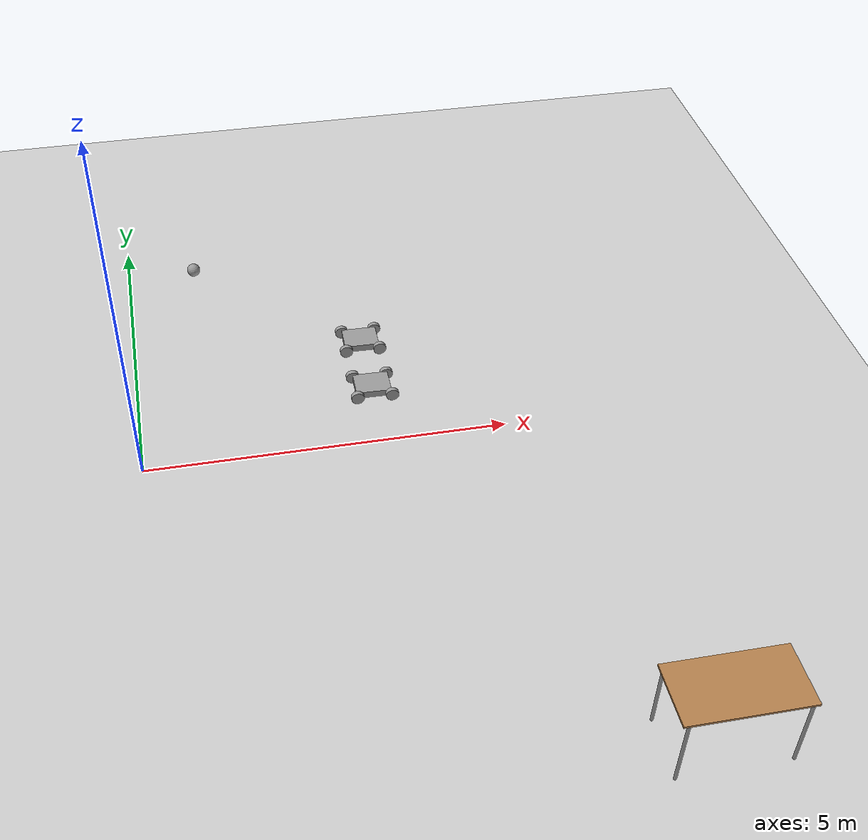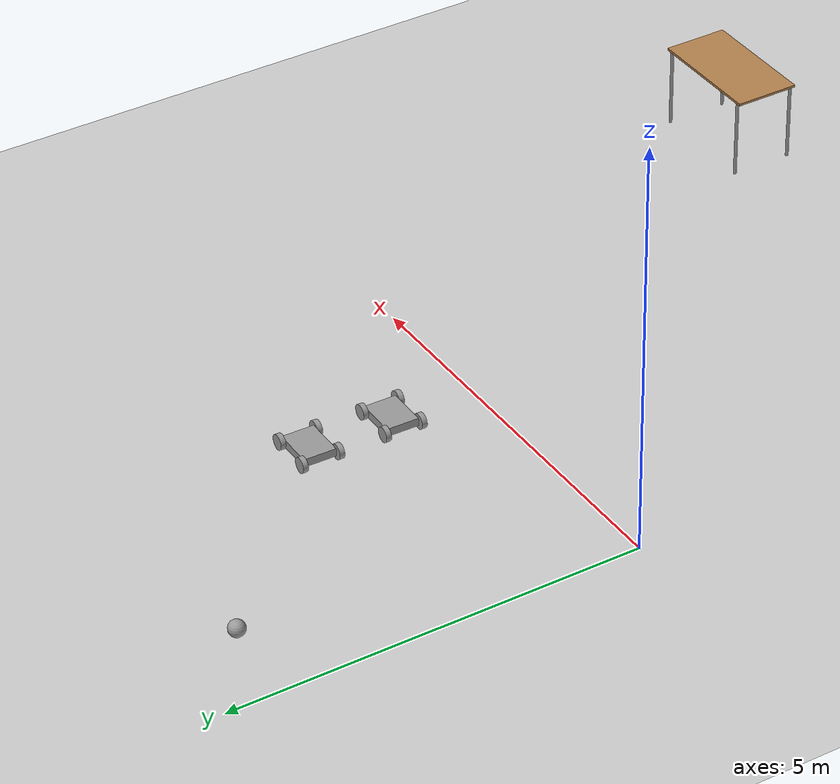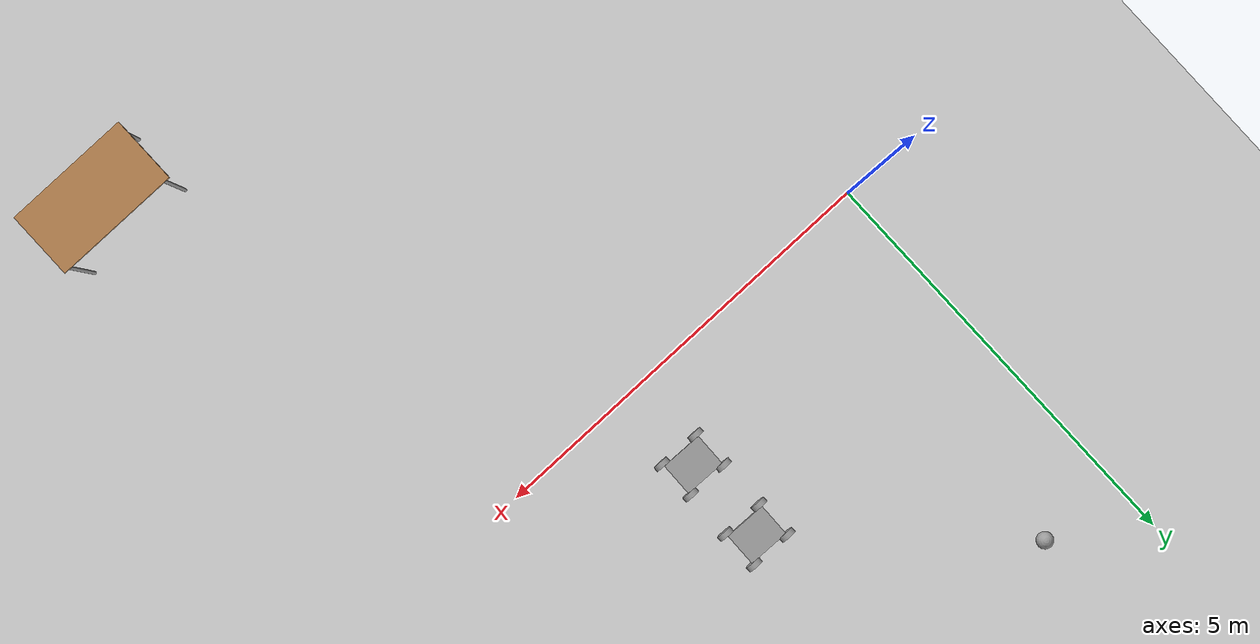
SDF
<sdf version="1.6">
 <world name="default">
  <model name="ground_plane">
   <static>1</static>
   <link name="link">
    <collision name="collision">
     <geometry><plane><normal>0 0 1</normal><size>100 100</size></plane></geometry>
     <surface>
      <contact><collide_bitmask>65535</collide_bitmask></contact>
      <friction><ode><mu>100</mu><mu2>50</mu2></ode></friction>
     </surface>
    </collision>
    <visual name="visual">
     <cast_shadows>0</cast_shadows>
     <geometry><plane><normal>0 0 1</normal><size>100 100</size></plane></geometry>
     <material>
      <script><uri>file://media/materials/scripts/gazebo.material</uri><name>Gazebo/Grey</name></script>
     </material>
    </visual>
   </link>
  </model>
  <model name="table">
   <static>1</static>
   <link name="link">
    <collision name="surface">
     <pose>0 0 1 0 -0 0</pose>
     <geometry><box><size>1.5 0.8 0.03</size></box></geometry>
     <surface><friction><ode><mu>0.6</mu><mu2>0.6</mu2></ode></friction></surface>
    </collision>
    <visual name="visual1">
     <pose>0 0 1 0 -0 0</pose>
     <geometry><box><size>1.5 0.8 0.03</size></box></geometry>
     <material>
      <script><uri>file://media/materials/scripts/gazebo.material</uri><name>Gazebo/Wood</name></script>
     </material>
    </visual>
    <collision name="front_left_leg">
     <pose>0.68 0.38 0.5 0 -0 0</pose>
     <geometry><cylinder><radius>0.02</radius><length>1</length></cylinder></geometry>
    </collision>
    <visual name="front_left_leg">
     <pose>0.68 0.38 0.5 0 -0 0</pose>
     <geometry><cylinder><radius>0.02</radius><length>1</length></cylinder></geometry>
     <material>
      <script><uri>file://media/materials/scripts/gazebo.material</uri><name>Gazebo/Grey</name></script>
     </material>
    </visual>
    <collision name="front_right_leg">
     <pose>0.68 -0.38 0.5 0 -0 0</pose>
     <geometry><cylinder><radius>0.02</radius><length>1</length></cylinder></geometry>
    </collision>
    <visual name="front_right_leg">
     <pose>0.68 -0.38 0.5 0 -0 0</pose>
     <geometry><cylinder><radius>0.02</radius><length>1</length></cylinder></geometry>
     <material>
      <script><uri>file://media/materials/scripts/gazebo.material</uri><name>Gazebo/Grey</name></script>
     </material>
    </visual>
    <collision name="back_right_leg">
     <pose>-0.68 -0.38 0.5 0 -0 0</pose>
     <geometry><cylinder><radius>0.02</radius><length>1</length></cylinder></geometry>
    </collision>
    <visual name="back_right_leg">
     <pose>-0.68 -0.38 0.5 0 -0 0</pose>
     <geometry><cylinder><radius>0.02</radius><length>1</length></cylinder></geometry>
     <material>
      <script><uri>file://media/materials/scripts/gazebo.material</uri><name>Gazebo/Grey</name></script>
     </material>
    </visual>
    <collision name="back_left_leg">
     <pose>-0.68 0.38 0.5 0 -0 0</pose>
     <geometry><cylinder><radius>0.02</radius><length>1</length></cylinder></geometry>
    </collision>
    <visual name="back_left_leg">
     <pose>-0.68 0.38 0.5 0 -0 0</pose>
     <geometry><cylinder><radius>0.02</radius><length>1</length></cylinder></geometry>
     <material>
      <script><uri>file://media/materials/scripts/gazebo.material</uri><name>Gazebo/Grey</name></script>
     </material>
    </visual>
   </link>
   <pose>6.07749 -5.38423 0 0 -0 0</pose>
  </model>
  <model name="model">
   <link name="link_0">
    <pose>-0.002904 -0.001997 0.002249 0 -0 0</pose>
    <inertial>
     <mass>1</mass>
     <inertia>
      <ixx>0.166667</ixx>
      <ixy>0</ixy>
      <ixz>0</ixz>
      <iyy>0.166667</iyy>
      <iyz>0</iyz>
      <izz>0.166667</izz>
     </inertia>
    </inertial>
    <visual name="visual">
     <geometry><box><size>0.4 0.5 0.1</size></box></geometry>
     <material>
      <lighting>1</lighting>
      <script><uri>file://media/materials/scripts/gazebo.material</uri><name>Gazebo/Grey</name></script>
      <shader type="pixel"><normal_map>__default__</normal_map></shader>
      <ambient>0.3 0.3 0.3 1</ambient>
      <diffuse>0.7 0.7 0.7 1</diffuse>
      <specular>0.01 0.01 0.01 1</specular>
      <emissive>0 0 0 1</emissive>
     </material>
    </visual>
    <collision name="collision">
     <geometry><box><size>0.4 0.5 0.1</size></box></geometry>
     <surface>
      <friction>
       <ode><mu>1</mu><mu2>1</mu2><fdir1>0 0 0</fdir1><slip1>0</slip1><slip2>0</slip2></ode>
       <torsional>
        <coefficient>1</coefficient>
        <patch_radius>0</patch_radius>
        <surface_radius>0</surface_radius>
        <use_patch_radius>1</use_patch_radius>
        <ode><slip>0</slip></ode>
       </torsional>
      </friction>
      <bounce><restitution_coefficient>0</restitution_coefficient><threshold>1e+06</threshold></bounce>
      <contact>
       <collide_without_contact>0</collide_without_contact>
       <collide_without_contact_bitmask>1</collide_without_contact_bitmask>
       <collide_bitmask>1</collide_bitmask>
       <ode>
        <soft_cfm>0</soft_cfm>
        <soft_erp>0.2</soft_erp>
        <kp>1e+13</kp>
        <kd>1</kd>
        <max_vel>0.01</max_vel>
        <min_depth>0</min_depth>
       </ode>
       <bullet>
        <split_impulse>1</split_impulse>
        <split_impulse_penetration_threshold>-0.01</split_impulse_penetration_threshold>
        <soft_cfm>0</soft_cfm>
        <soft_erp>0.2</soft_erp>
        <kp>1e+13</kp>
        <kd>1</kd>
       </bullet>
      </contact>
     </surface>
    </collision>
   </link>
   <link name="link_1">
    <pose>-0.226187 -0.251789 -0.000187 -0.004638 1.5707 -0.004637</pose>
    <inertial>
     <mass>1.45192</mass>
     <inertia>
      <ixx>0.00361618</ixx>
      <ixy>0</ixy>
      <ixz>0</ixz>
      <iyy>0.00361618</iyy>
      <iyz>0</iyz>
      <izz>0.00626991</izz>
     </inertia>
    </inertial>
    <visual name="visual">
     <geometry><cylinder><radius>0.0929338</radius><length>0.063066</length></cylinder></geometry>
     <material>
      <lighting>1</lighting>
      <script><uri>file://media/materials/scripts/gazebo.material</uri><name>Gazebo/Grey</name></script>
      <shader type="pixel"><normal_map>__default__</normal_map></shader>
      <ambient>0.3 0.3 0.3 1</ambient>
      <diffuse>0.7 0.7 0.7 1</diffuse>
      <specular>0.01 0.01 0.01 1</specular>
      <emissive>0 0 0 1</emissive>
     </material>
    </visual>
    <collision name="collision">
     <geometry><cylinder><radius>0.092934</radius><length>0.063066</length></cylinder></geometry>
     <surface>
      <friction>
       <ode><mu>1</mu><mu2>1</mu2><fdir1>0 0 0</fdir1><slip1>0</slip1><slip2>0</slip2></ode>
       <torsional>
        <coefficient>1</coefficient>
        <patch_radius>0</patch_radius>
        <surface_radius>0</surface_radius>
        <use_patch_radius>1</use_patch_radius>
        <ode><slip>0</slip></ode>
       </torsional>
      </friction>
      <bounce><restitution_coefficient>0</restitution_coefficient><threshold>1e+06</threshold></bounce>
      <contact>
       <collide_without_contact>0</collide_without_contact>
       <collide_without_contact_bitmask>1</collide_without_contact_bitmask>
       <collide_bitmask>1</collide_bitmask>
       <ode>
        <soft_cfm>0</soft_cfm>
        <soft_erp>0.2</soft_erp>
        <kp>1e+13</kp>
        <kd>1</kd>
        <max_vel>0.01</max_vel>
        <min_depth>0</min_depth>
       </ode>
       <bullet>
        <split_impulse>1</split_impulse>
        <split_impulse_penetration_threshold>-0.01</split_impulse_penetration_threshold>
        <soft_cfm>0</soft_cfm>
        <soft_erp>0.2</soft_erp>
        <kp>1e+13</kp>
        <kd>1</kd>
       </bullet>
      </contact>
     </surface>
    </collision>
   </link>
   <link name="link_1_clone">
    <pose>-0.232362 0.238295 -0.000751 -0.004643 1.5707 -0.004642</pose>
    <inertial>
     <mass>1.45192</mass>
     <inertia>
      <ixx>0.00361618</ixx>
      <ixy>0</ixy>
      <ixz>0</ixz>
      <iyy>0.00361618</iyy>
      <iyz>0</iyz>
      <izz>0.00626991</izz>
     </inertia>
    </inertial>
    <visual name="visual">
     <geometry><cylinder><radius>0.0929338</radius><length>0.063066</length></cylinder></geometry>
     <material>
      <lighting>1</lighting>
      <script><uri>file://media/materials/scripts/gazebo.material</uri><name>Gazebo/Grey</name></script>
      <shader type="pixel"><normal_map>__default__</normal_map></shader>
      <ambient>0.3 0.3 0.3 1</ambient>
      <diffuse>0.7 0.7 0.7 1</diffuse>
      <specular>0.01 0.01 0.01 1</specular>
      <emissive>0 0 0 1</emissive>
     </material>
    </visual>
    <collision name="collision">
     <geometry><cylinder><radius>0.092934</radius><length>0.063066</length></cylinder></geometry>
     <surface>
      <friction>
       <ode><mu>1</mu><mu2>1</mu2><fdir1>0 0 0</fdir1><slip1>0</slip1><slip2>0</slip2></ode>
       <torsional>
        <coefficient>1</coefficient>
        <patch_radius>0</patch_radius>
        <surface_radius>0</surface_radius>
        <use_patch_radius>1</use_patch_radius>
        <ode><slip>0</slip></ode>
       </torsional>
      </friction>
      <bounce><restitution_coefficient>0</restitution_coefficient><threshold>1e+06</threshold></bounce>
      <contact>
       <collide_without_contact>0</collide_without_contact>
       <collide_without_contact_bitmask>1</collide_without_contact_bitmask>
       <collide_bitmask>1</collide_bitmask>
       <ode>
        <soft_cfm>0</soft_cfm>
        <soft_erp>0.2</soft_erp>
        <kp>1e+13</kp>
        <kd>1</kd>
        <max_vel>0.01</max_vel>
        <min_depth>0</min_depth>
       </ode>
       <bullet>
        <split_impulse>1</split_impulse>
        <split_impulse_penetration_threshold>-0.01</split_impulse_penetration_threshold>
        <soft_cfm>0</soft_cfm>
        <soft_erp>0.2</soft_erp>
        <kp>1e+13</kp>
        <kd>1</kd>
       </bullet>
      </contact>
     </surface>
    </collision>
   </link>
   <link name="link_1_clone_0">
    <pose>0.230723 0.254996 -0.000688 -0.004646 1.5707 -0.004645</pose>
    <inertial>
     <mass>1.45192</mass>
     <inertia>
      <ixx>0.00361618</ixx>
      <ixy>0</ixy>
      <ixz>0</ixz>
      <iyy>0.00361618</iyy>
      <iyz>0</iyz>
      <izz>0.00626991</izz>
     </inertia>
    </inertial>
    <visual name="visual">
     <geometry><cylinder><radius>0.0929338</radius><length>0.063066</length></cylinder></geometry>
     <material>
      <lighting>1</lighting>
      <script><uri>file://media/materials/scripts/gazebo.material</uri><name>Gazebo/Grey</name></script>
      <shader type="pixel"><normal_map>__default__</normal_map></shader>
      <ambient>0.3 0.3 0.3 1</ambient>
      <diffuse>0.7 0.7 0.7 1</diffuse>
      <specular>0.01 0.01 0.01 1</specular>
      <emissive>0 0 0 1</emissive>
     </material>
    </visual>
    <collision name="collision">
     <geometry><cylinder><radius>0.092934</radius><length>0.063066</length></cylinder></geometry>
     <surface>
      <friction>
       <ode><mu>1</mu><mu2>1</mu2><fdir1>0 0 0</fdir1><slip1>0</slip1><slip2>0</slip2></ode>
       <torsional>
        <coefficient>1</coefficient>
        <patch_radius>0</patch_radius>
        <surface_radius>0</surface_radius>
        <use_patch_radius>1</use_patch_radius>
        <ode><slip>0</slip></ode>
       </torsional>
      </friction>
      <bounce><restitution_coefficient>0</restitution_coefficient><threshold>1e+06</threshold></bounce>
      <contact>
       <collide_without_contact>0</collide_without_contact>
       <collide_without_contact_bitmask>1</collide_without_contact_bitmask>
       <collide_bitmask>1</collide_bitmask>
       <ode>
        <soft_cfm>0</soft_cfm>
        <soft_erp>0.2</soft_erp>
        <kp>1e+13</kp>
        <kd>1</kd>
        <max_vel>0.01</max_vel>
        <min_depth>0</min_depth>
       </ode>
       <bullet>
        <split_impulse>1</split_impulse>
        <split_impulse_penetration_threshold>-0.01</split_impulse_penetration_threshold>
        <soft_cfm>0</soft_cfm>
        <soft_erp>0.2</soft_erp>
        <kp>1e+13</kp>
        <kd>1</kd>
       </bullet>
      </contact>
     </surface>
    </collision>
   </link>
   <link name="link_1_clone_0_clone">
    <pose>0.230723 -0.239511 -0.000688 -0.004644 1.5707 -0.004643</pose>
    <inertial>
     <mass>1.45192</mass>
     <inertia>
      <ixx>0.00361618</ixx>
      <ixy>0</ixy>
      <ixz>0</ixz>
      <iyy>0.00361618</iyy>
      <iyz>0</iyz>
      <izz>0.00626991</izz>
     </inertia>
    </inertial>
    <visual name="visual">
     <geometry><cylinder><radius>0.0929338</radius><length>0.063066</length></cylinder></geometry>
     <material>
      <lighting>1</lighting>
      <script><uri>file://media/materials/scripts/gazebo.material</uri><name>Gazebo/Grey</name></script>
      <shader type="pixel"><normal_map>__default__</normal_map></shader>
      <ambient>0.3 0.3 0.3 1</ambient>
      <diffuse>0.7 0.7 0.7 1</diffuse>
      <specular>0.01 0.01 0.01 1</specular>
      <emissive>0 0 0 1</emissive>
     </material>
    </visual>
    <collision name="collision">
     <geometry><cylinder><radius>0.092934</radius><length>0.063066</length></cylinder></geometry>
     <surface>
      <friction>
       <ode><mu>1</mu><mu2>1</mu2><fdir1>0 0 0</fdir1><slip1>0</slip1><slip2>0</slip2></ode>
       <torsional>
        <coefficient>1</coefficient>
        <patch_radius>0</patch_radius>
        <surface_radius>0</surface_radius>
        <use_patch_radius>1</use_patch_radius>
        <ode><slip>0</slip></ode>
       </torsional>
      </friction>
      <bounce><restitution_coefficient>0</restitution_coefficient><threshold>1e+06</threshold></bounce>
      <contact>
       <collide_without_contact>0</collide_without_contact>
       <collide_without_contact_bitmask>1</collide_without_contact_bitmask>
       <collide_bitmask>1</collide_bitmask>
       <ode>
        <soft_cfm>0</soft_cfm>
        <soft_erp>0.2</soft_erp>
        <kp>1e+13</kp>
        <kd>1</kd>
        <max_vel>0.01</max_vel>
        <min_depth>0</min_depth>
       </ode>
       <bullet>
        <split_impulse>1</split_impulse>
        <split_impulse_penetration_threshold>-0.01</split_impulse_penetration_threshold>
        <soft_cfm>0</soft_cfm>
        <soft_erp>0.2</soft_erp>
        <kp>1e+13</kp>
        <kd>1</kd>
       </bullet>
      </contact>
     </surface>
    </collision>
   </link>
   <joint name="link_0_JOINT_18" type="revolute">
    <parent>link_0</parent>
    <child>link_1</child>
    <axis>
     <xyz>0 0 1</xyz>
     <use_parent_model_frame>0</use_parent_model_frame>
     <limit>
      <lower>-1.79769e+308</lower>
      <upper>1.79769e+308</upper>
      <effort>-1</effort>
      <velocity>-1</velocity>
     </limit>
     <dynamics>
      <spring_reference>0</spring_reference>
      <spring_stiffness>0</spring_stiffness>
      <damping>0</damping>
      <friction>0</friction>
     </dynamics>
    </axis>
    <physics>
     <ode><limit><cfm>0</cfm><erp>0.2</erp></limit><suspension><cfm>0</cfm><erp>0.2</erp></suspension></ode>
    </physics>
   </joint>
   <joint name="link_0_JOINT_19" type="revolute">
    <parent>link_0</parent>
    <child>link_1_clone</child>
    <axis>
     <xyz>0 0 1</xyz>
     <use_parent_model_frame>0</use_parent_model_frame>
     <limit>
      <lower>-1.79769e+308</lower>
      <upper>1.79769e+308</upper>
      <effort>-1</effort>
      <velocity>-1</velocity>
     </limit>
     <dynamics>
      <spring_reference>0</spring_reference>
      <spring_stiffness>0</spring_stiffness>
      <damping>0</damping>
     </dynamics>
    </axis>
    <physics>
     <ode><limit><cfm>0</cfm><erp>0.2</erp></limit><suspension><cfm>0</cfm><erp>0.2</erp></suspension></ode>
    </physics>
   </joint>
   <joint name="link_0_JOINT_20" type="revolute">
    <parent>link_0</parent>
    <child>link_1_clone_0</child>
    <axis>
     <xyz>0 0 1</xyz>
     <use_parent_model_frame>0</use_parent_model_frame>
     <limit>
      <lower>-1.79769e+308</lower>
      <upper>1.79769e+308</upper>
      <effort>-1</effort>
      <velocity>-1</velocity>
     </limit>
     <dynamics>
      <spring_reference>0</spring_reference>
      <spring_stiffness>0</spring_stiffness>
      <damping>0</damping>
      <friction>0</friction>
     </dynamics>
    </axis>
    <physics>
     <ode><limit><cfm>0</cfm><erp>0.2</erp></limit><suspension><cfm>0</cfm><erp>0.2</erp></suspension></ode>
    </physics>
   </joint>
   <joint name="link_0_JOINT_22" type="revolute">
    <parent>link_0</parent>
    <child>link_1_clone_0_clone</child>
    <axis>
     <xyz>0 0 1</xyz>
     <use_parent_model_frame>0</use_parent_model_frame>
     <limit>
      <lower>-1.79769e+308</lower>
      <upper>1.79769e+308</upper>
      <effort>-1</effort>
      <velocity>-1</velocity>
     </limit>
     <dynamics>
      <spring_reference>0</spring_reference>
      <spring_stiffness>0</spring_stiffness>
      <damping>0</damping>
     </dynamics>
    </axis>
    <physics>
     <ode><limit><cfm>0</cfm><erp>0.2</erp></limit><suspension><cfm>0</cfm><erp>0.2</erp></suspension></ode>
    </physics>
   </joint>
   <static>0</static>
   <pose>3.30415 1.05015 0.093649 2.8e-05 0.000107 -1.59202</pose>
  </model>
  <model name="model_clone">
   <link name="link_0">
    <pose>-0.002904 -0.001997 0.002249 0 -0 0</pose>
    <inertial>
     <mass>1</mass>
     <inertia>
      <ixx>0.166667</ixx>
      <ixy>0</ixy>
      <ixz>0</ixz>
      <iyy>0.166667</iyy>
      <iyz>0</iyz>
      <izz>0.166667</izz>
     </inertia>
    </inertial>
    <visual name="visual">
     <geometry><box><size>0.4 0.5 0.1</size></box></geometry>
     <material>
      <lighting>1</lighting>
      <script><uri>file://media/materials/scripts/gazebo.material</uri><name>Gazebo/Grey</name></script>
      <shader type="pixel"><normal_map>__default__</normal_map></shader>
      <ambient>0.3 0.3 0.3 1</ambient>
      <diffuse>0.7 0.7 0.7 1</diffuse>
      <specular>0.01 0.01 0.01 1</specular>
      <emissive>0 0 0 1</emissive>
     </material>
    </visual>
    <collision name="collision">
     <geometry><box><size>0.4 0.5 0.1</size></box></geometry>
     <surface>
      <friction>
       <ode><mu>1</mu><mu2>1</mu2><fdir1>0 0 0</fdir1><slip1>0</slip1><slip2>0</slip2></ode>
       <torsional>
        <coefficient>1</coefficient>
        <patch_radius>0</patch_radius>
        <surface_radius>0</surface_radius>
        <use_patch_radius>1</use_patch_radius>
        <ode><slip>0</slip></ode>
       </torsional>
      </friction>
      <bounce><restitution_coefficient>0</restitution_coefficient><threshold>1e+06</threshold></bounce>
      <contact>
       <collide_without_contact>0</collide_without_contact>
       <collide_without_contact_bitmask>1</collide_without_contact_bitmask>
       <collide_bitmask>1</collide_bitmask>
       <ode>
        <soft_cfm>0</soft_cfm>
        <soft_erp>0.2</soft_erp>
        <kp>1e+13</kp>
        <kd>1</kd>
        <max_vel>0.01</max_vel>
        <min_depth>0</min_depth>
       </ode>
       <bullet>
        <split_impulse>1</split_impulse>
        <split_impulse_penetration_threshold>-0.01</split_impulse_penetration_threshold>
        <soft_cfm>0</soft_cfm>
        <soft_erp>0.2</soft_erp>
        <kp>1e+13</kp>
        <kd>1</kd>
       </bullet>
      </contact>
     </surface>
    </collision>
   </link>
   <link name="link_1">
    <pose>-0.226187 -0.251789 -0.000187 -0.004638 1.5707 -0.004637</pose>
    <inertial>
     <mass>1.45192</mass>
     <inertia>
      <ixx>0.00361618</ixx>
      <ixy>0</ixy>
      <ixz>0</ixz>
      <iyy>0.00361618</iyy>
      <iyz>0</iyz>
      <izz>0.00626991</izz>
     </inertia>
    </inertial>
    <visual name="visual">
     <geometry><cylinder><radius>0.0929338</radius><length>0.063066</length></cylinder></geometry>
     <material>
      <lighting>1</lighting>
      <script><uri>file://media/materials/scripts/gazebo.material</uri><name>Gazebo/Grey</name></script>
      <shader type="pixel"><normal_map>__default__</normal_map></shader>
      <ambient>0.3 0.3 0.3 1</ambient>
      <diffuse>0.7 0.7 0.7 1</diffuse>
      <specular>0.01 0.01 0.01 1</specular>
      <emissive>0 0 0 1</emissive>
     </material>
    </visual>
    <collision name="collision">
     <geometry><cylinder><radius>0.092934</radius><length>0.063066</length></cylinder></geometry>
     <surface>
      <friction>
       <ode><mu>1</mu><mu2>1</mu2><fdir1>0 0 0</fdir1><slip1>0</slip1><slip2>0</slip2></ode>
       <torsional>
        <coefficient>1</coefficient>
        <patch_radius>0</patch_radius>
        <surface_radius>0</surface_radius>
        <use_patch_radius>1</use_patch_radius>
        <ode><slip>0</slip></ode>
       </torsional>
      </friction>
      <bounce><restitution_coefficient>0</restitution_coefficient><threshold>1e+06</threshold></bounce>
      <contact>
       <collide_without_contact>0</collide_without_contact>
       <collide_without_contact_bitmask>1</collide_without_contact_bitmask>
       <collide_bitmask>1</collide_bitmask>
       <ode>
        <soft_cfm>0</soft_cfm>
        <soft_erp>0.2</soft_erp>
        <kp>1e+13</kp>
        <kd>1</kd>
        <max_vel>0.01</max_vel>
        <min_depth>0</min_depth>
       </ode>
       <bullet>
        <split_impulse>1</split_impulse>
        <split_impulse_penetration_threshold>-0.01</split_impulse_penetration_threshold>
        <soft_cfm>0</soft_cfm>
        <soft_erp>0.2</soft_erp>
        <kp>1e+13</kp>
        <kd>1</kd>
       </bullet>
      </contact>
     </surface>
    </collision>
   </link>
   <link name="link_1_clone">
    <pose>-0.232362 0.238295 -0.000751 -0.004643 1.5707 -0.004642</pose>
    <inertial>
     <mass>1.45192</mass>
     <inertia>
      <ixx>0.00361618</ixx>
      <ixy>0</ixy>
      <ixz>0</ixz>
      <iyy>0.00361618</iyy>
      <iyz>0</iyz>
      <izz>0.00626991</izz>
     </inertia>
    </inertial>
    <visual name="visual">
     <geometry><cylinder><radius>0.0929338</radius><length>0.063066</length></cylinder></geometry>
     <material>
      <lighting>1</lighting>
      <script><uri>file://media/materials/scripts/gazebo.material</uri><name>Gazebo/Grey</name></script>
      <shader type="pixel"><normal_map>__default__</normal_map></shader>
      <ambient>0.3 0.3 0.3 1</ambient>
      <diffuse>0.7 0.7 0.7 1</diffuse>
      <specular>0.01 0.01 0.01 1</specular>
      <emissive>0 0 0 1</emissive>
     </material>
    </visual>
    <collision name="collision">
     <geometry><cylinder><radius>0.092934</radius><length>0.063066</length></cylinder></geometry>
     <surface>
      <friction>
       <ode><mu>1</mu><mu2>1</mu2><fdir1>0 0 0</fdir1><slip1>0</slip1><slip2>0</slip2></ode>
       <torsional>
        <coefficient>1</coefficient>
        <patch_radius>0</patch_radius>
        <surface_radius>0</surface_radius>
        <use_patch_radius>1</use_patch_radius>
        <ode><slip>0</slip></ode>
       </torsional>
      </friction>
      <bounce><restitution_coefficient>0</restitution_coefficient><threshold>1e+06</threshold></bounce>
      <contact>
       <collide_without_contact>0</collide_without_contact>
       <collide_without_contact_bitmask>1</collide_without_contact_bitmask>
       <collide_bitmask>1</collide_bitmask>
       <ode>
        <soft_cfm>0</soft_cfm>
        <soft_erp>0.2</soft_erp>
        <kp>1e+13</kp>
        <kd>1</kd>
        <max_vel>0.01</max_vel>
        <min_depth>0</min_depth>
       </ode>
       <bullet>
        <split_impulse>1</split_impulse>
        <split_impulse_penetration_threshold>-0.01</split_impulse_penetration_threshold>
        <soft_cfm>0</soft_cfm>
        <soft_erp>0.2</soft_erp>
        <kp>1e+13</kp>
        <kd>1</kd>
       </bullet>
      </contact>
     </surface>
    </collision>
   </link>
   <link name="link_1_clone_0">
    <pose>0.230723 0.254996 -0.000688 -0.004646 1.5707 -0.004645</pose>
    <inertial>
     <mass>1.45192</mass>
     <inertia>
      <ixx>0.00361618</ixx>
      <ixy>0</ixy>
      <ixz>0</ixz>
      <iyy>0.00361618</iyy>
      <iyz>0</iyz>
      <izz>0.00626991</izz>
     </inertia>
    </inertial>
    <visual name="visual">
     <geometry><cylinder><radius>0.0929338</radius><length>0.063066</length></cylinder></geometry>
     <material>
      <lighting>1</lighting>
      <script><uri>file://media/materials/scripts/gazebo.material</uri><name>Gazebo/Grey</name></script>
      <shader type="pixel"><normal_map>__default__</normal_map></shader>
      <ambient>0.3 0.3 0.3 1</ambient>
      <diffuse>0.7 0.7 0.7 1</diffuse>
      <specular>0.01 0.01 0.01 1</specular>
      <emissive>0 0 0 1</emissive>
     </material>
    </visual>
    <collision name="collision">
     <geometry><cylinder><radius>0.092934</radius><length>0.063066</length></cylinder></geometry>
     <surface>
      <friction>
       <ode><mu>1</mu><mu2>1</mu2><fdir1>0 0 0</fdir1><slip1>0</slip1><slip2>0</slip2></ode>
       <torsional>
        <coefficient>1</coefficient>
        <patch_radius>0</patch_radius>
        <surface_radius>0</surface_radius>
        <use_patch_radius>1</use_patch_radius>
        <ode><slip>0</slip></ode>
       </torsional>
      </friction>
      <bounce><restitution_coefficient>0</restitution_coefficient><threshold>1e+06</threshold></bounce>
      <contact>
       <collide_without_contact>0</collide_without_contact>
       <collide_without_contact_bitmask>1</collide_without_contact_bitmask>
       <collide_bitmask>1</collide_bitmask>
       <ode>
        <soft_cfm>0</soft_cfm>
        <soft_erp>0.2</soft_erp>
        <kp>1e+13</kp>
        <kd>1</kd>
        <max_vel>0.01</max_vel>
        <min_depth>0</min_depth>
       </ode>
       <bullet>
        <split_impulse>1</split_impulse>
        <split_impulse_penetration_threshold>-0.01</split_impulse_penetration_threshold>
        <soft_cfm>0</soft_cfm>
        <soft_erp>0.2</soft_erp>
        <kp>1e+13</kp>
        <kd>1</kd>
       </bullet>
      </contact>
     </surface>
    </collision>
   </link>
   <link name="link_1_clone_0_clone">
    <pose>0.230723 -0.239511 -0.000688 -0.004644 1.5707 -0.004643</pose>
    <inertial>
     <mass>1.45192</mass>
     <inertia>
      <ixx>0.00361618</ixx>
      <ixy>0</ixy>
      <ixz>0</ixz>
      <iyy>0.00361618</iyy>
      <iyz>0</iyz>
      <izz>0.00626991</izz>
     </inertia>
    </inertial>
    <visual name="visual">
     <geometry><cylinder><radius>0.0929338</radius><length>0.063066</length></cylinder></geometry>
     <material>
      <lighting>1</lighting>
      <script><uri>file://media/materials/scripts/gazebo.material</uri><name>Gazebo/Grey</name></script>
      <shader type="pixel"><normal_map>__default__</normal_map></shader>
      <ambient>0.3 0.3 0.3 1</ambient>
      <diffuse>0.7 0.7 0.7 1</diffuse>
      <specular>0.01 0.01 0.01 1</specular>
      <emissive>0 0 0 1</emissive>
     </material>
    </visual>
    <collision name="collision">
     <geometry><cylinder><radius>0.092934</radius><length>0.063066</length></cylinder></geometry>
     <surface>
      <friction>
       <ode><mu>1</mu><mu2>1</mu2><fdir1>0 0 0</fdir1><slip1>0</slip1><slip2>0</slip2></ode>
       <torsional>
        <coefficient>1</coefficient>
        <patch_radius>0</patch_radius>
        <surface_radius>0</surface_radius>
        <use_patch_radius>1</use_patch_radius>
        <ode><slip>0</slip></ode>
       </torsional>
      </friction>
      <bounce><restitution_coefficient>0</restitution_coefficient><threshold>1e+06</threshold></bounce>
      <contact>
       <collide_without_contact>0</collide_without_contact>
       <collide_without_contact_bitmask>1</collide_without_contact_bitmask>
       <collide_bitmask>1</collide_bitmask>
       <ode>
        <soft_cfm>0</soft_cfm>
        <soft_erp>0.2</soft_erp>
        <kp>1e+13</kp>
        <kd>1</kd>
        <max_vel>0.01</max_vel>
        <min_depth>0</min_depth>
       </ode>
       <bullet>
        <split_impulse>1</split_impulse>
        <split_impulse_penetration_threshold>-0.01</split_impulse_penetration_threshold>
        <soft_cfm>0</soft_cfm>
        <soft_erp>0.2</soft_erp>
        <kp>1e+13</kp>
        <kd>1</kd>
       </bullet>
      </contact>
     </surface>
    </collision>
   </link>
   <joint name="link_0_JOINT_18" type="revolute">
    <parent>link_0</parent>
    <child>link_1</child>
    <axis>
     <xyz>0 0 1</xyz>
     <use_parent_model_frame>0</use_parent_model_frame>
     <limit>
      <lower>-1.79769e+308</lower>
      <upper>1.79769e+308</upper>
      <effort>-1</effort>
      <velocity>-1</velocity>
     </limit>
     <dynamics>
      <spring_reference>0</spring_reference>
      <spring_stiffness>0</spring_stiffness>
      <damping>0</damping>
      <friction>0</friction>
     </dynamics>
    </axis>
    <physics>
     <ode><limit><cfm>0</cfm><erp>0.2</erp></limit><suspension><cfm>0</cfm><erp>0.2</erp></suspension></ode>
    </physics>
   </joint>
   <joint name="link_0_JOINT_19" type="revolute">
    <parent>link_0</parent>
    <child>link_1_clone</child>
    <axis>
     <xyz>0 0 1</xyz>
     <use_parent_model_frame>0</use_parent_model_frame>
     <limit>
      <lower>-1.79769e+308</lower>
      <upper>1.79769e+308</upper>
      <effort>-1</effort>
      <velocity>-1</velocity>
     </limit>
     <dynamics>
      <spring_reference>0</spring_reference>
      <spring_stiffness>0</spring_stiffness>
      <damping>0</damping>
     </dynamics>
    </axis>
    <physics>
     <ode><limit><cfm>0</cfm><erp>0.2</erp></limit><suspension><cfm>0</cfm><erp>0.2</erp></suspension></ode>
    </physics>
   </joint>
   <joint name="link_0_JOINT_20" type="revolute">
    <parent>link_0</parent>
    <child>link_1_clone_0</child>
    <axis>
     <xyz>0 0 1</xyz>
     <use_parent_model_frame>0</use_parent_model_frame>
     <limit>
      <lower>-1.79769e+308</lower>
      <upper>1.79769e+308</upper>
      <effort>-1</effort>
      <velocity>-1</velocity>
     </limit>
     <dynamics>
      <spring_reference>0</spring_reference>
      <spring_stiffness>0</spring_stiffness>
      <damping>0</damping>
      <friction>0</friction>
     </dynamics>
    </axis>
    <physics>
     <ode><limit><cfm>0</cfm><erp>0.2</erp></limit><suspension><cfm>0</cfm><erp>0.2</erp></suspension></ode>
    </physics>
   </joint>
   <joint name="link_0_JOINT_22" type="revolute">
    <parent>link_0</parent>
    <child>link_1_clone_0_clone</child>
    <axis>
     <xyz>0 0 1</xyz>
     <use_parent_model_frame>0</use_parent_model_frame>
     <limit>
      <lower>-1.79769e+308</lower>
      <upper>1.79769e+308</upper>
      <effort>-1</effort>
      <velocity>-1</velocity>
     </limit>
     <dynamics>
      <spring_reference>0</spring_reference>
      <spring_stiffness>0</spring_stiffness>
      <damping>0</damping>
     </dynamics>
    </axis>
    <physics>
     <ode><limit><cfm>0</cfm><erp>0.2</erp></limit><suspension><cfm>0</cfm><erp>0.2</erp></suspension></ode>
    </physics>
   </joint>
   <static>0</static>
   <pose>3.30932 2.09108 0.093649 2.8e-05 0.000107 -1.59203</pose>
  </model>
  <model name="white_ball">
   <link name="link_0">
    <inertial>
     <mass>1</mass>
     <inertia><ixx>0.1</ixx><ixy>0</ixy><ixz>0</ixz><iyy>0.1</iyy><iyz>0</iyz><izz>0.1</izz></inertia>
    </inertial>
    <visual name="visual">
     <geometry><sphere><radius>0.1</radius></sphere></geometry>
     <material>
      <lighting>1</lighting>
      <script><uri>file://media/materials/scripts/gazebo.material</uri><name>Gazebo/Grey</name></script>
      <shader type="pixel"><normal_map>__default__</normal_map></shader>
      <ambient>1 1 1 1</ambient>
      <diffuse>1 1 1 1</diffuse>
      <specular>1 1 1 1</specular>
      <emissive>1 1 1 1</emissive>
     </material>
    </visual>
    <collision name="collision">
     <geometry><sphere><radius>0.1</radius></sphere></geometry>
     <surface>
      <friction>
       <ode><mu>1</mu><mu2>1</mu2><fdir1>0 0 0</fdir1><slip1>0</slip1><slip2>0</slip2></ode>
       <torsional>
        <coefficient>1</coefficient>
        <patch_radius>0</patch_radius>
        <surface_radius>0</surface_radius>
        <use_patch_radius>1</use_patch_radius>
        <ode><slip>0</slip></ode>
       </torsional>
      </friction>
      <bounce><restitution_coefficient>0</restitution_coefficient><threshold>1e+06</threshold></bounce>
      <contact>
       <collide_without_contact>0</collide_without_contact>
       <collide_without_contact_bitmask>1</collide_without_contact_bitmask>
       <collide_bitmask>1</collide_bitmask>
       <ode>
        <soft_cfm>0</soft_cfm>
        <soft_erp>0.2</soft_erp>
        <kp>1e+13</kp>
        <kd>1</kd>
        <max_vel>0.01</max_vel>
        <min_depth>0</min_depth>
       </ode>
       <bullet>
        <split_impulse>1</split_impulse>
        <split_impulse_penetration_threshold>-0.01</split_impulse_penetration_threshold>
        <soft_cfm>0</soft_cfm>
        <soft_erp>0.2</soft_erp>
        <kp>1e+13</kp>
        <kd>1</kd>
       </bullet>
      </contact>
     </surface>
    </collision>
   </link>
   <static>0</static>
   <pose>1.00768 4.2906 0.1 0 -0 0</pose>
  </model>
 </world>
</sdf>
